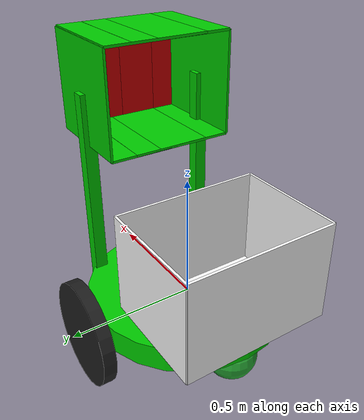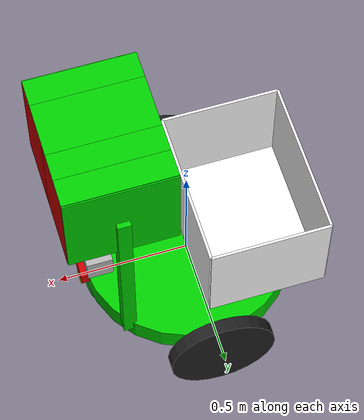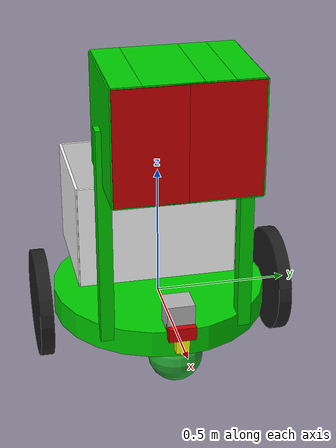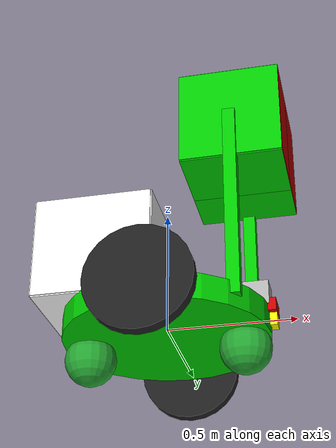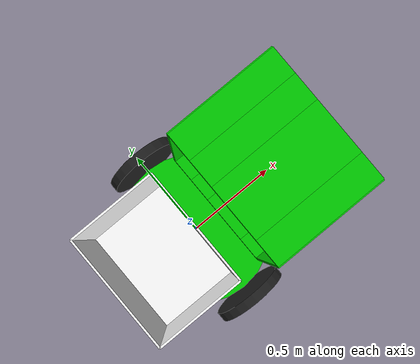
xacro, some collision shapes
<?xml version='1.0'?>

<robot name="my_robot" xmlns:xacro="http://www.ros.org/wiki/xacro">

     <material name="blue">
        <color rgba="0 0 0.8 1"/>
    </material>
    <material name="red">
        <color rgba="0.8 0 0 1"/>
    </material>
    <material name="green">
        <color rgba="0 0.8 0 1"/>
    </material>
    <material name="white">
        <color rgba="1.0 1.0 1.0 1"/>
    </material>
    <material name="yellow">
        <color rgba="1.0 1.0 0.0 1"/>
    </material>
    <!-- Include plugins-->
    <xacro:include filename="$(find my_robot)/urdf/my_robot.gazebo" />

    <!-- Include arm definition file-->
    <xacro:include filename="$(find my_robot)/urdf/arm.xacro" />

    <!-- Include ball container file -->
    <xacro:include filename="$(find my_robot)/urdf/ball_container.xacro" />

    <!-- create the left and right arm-->
    <arm lr="left" tY =  "-1" />
    <arm lr="right" tY = "1" />

    <!-- create ball container-->
    <ball_container/>

    <!-- link and joints definition of the robot chassis and wheel-->

    <link name="robot_footprint"></link>

    <joint name="robot_footprint_joint" type="fixed">
        <origin xyz="0 0 0" rpy="0 0 0"/>
        <parent link="robot_footprint"/>
        <child link="chassis"/>
    </joint>

    <link name="base_footprint"></link>

    <joint name="base_footprint_joint" type="fixed">
        <origin xyz="0 0 0" rpy="0 0 0"/>
        <parent link="robot_footprint"/>
        <child link="base_footprint"/>
    </joint>

    <!-- definition of the chassis -->

    <link name='chassis'>
        <pose>0 0 0.1 0 0 0</pose>

        <inertial>
            <mass value="15.0"/>
            <origin xyz="0.0 0 0" rpy="0 0 0"/>
            <inertia
                ixx="0.1" ixy="0" ixz = "0"
                          iyy = "0.1" iyz = "0"
                                      izz = "0.1"

            />

        </inertial>

        <collision name='collision'>
            <origin xyz="0 0 0" rpy="0 0 0"/>
            <geometry>
                <cylinder radius="0.4" length="0.1"/>
            </geometry>
        </collision>

        <visual name='chassis_visual'>
            <origin xyz = "0 0 0" rpy = "0 0 0"/>
            <geometry>
                <cylinder radius="0.4" length="0.1"/>
            </geometry>
            <material name="green"/>
        </visual>

        <collision name = 'back_caster_collision'>
            <origin xyz = "-0.3 0 -0.1" rpy=" 0 0 0"/>
            <geometry>
                <sphere radius="0.099"/>
            </geometry>

        </collision>

        <visual name='back_caster_visual'>
            <origin xyz = "-0.3 0 -0.1" rpy=" 0 0 0"/>
            <geometry>
                <sphere radius="0.1"/>
            </geometry>
        </visual>

        <collision name = 'front_caster_collision'>
            <origin xyz = "0.3 0 -0.1" rpy=" 0 0 0"/>
            <geometry>
                <sphere radius="0.099"/>
            </geometry>

        </collision>

        <visual name='front_caster_visual'>
            <origin xyz = "0.3 0 -0.1" rpy=" 0 0 0"/>
            <geometry>
                <sphere radius="0.1"/>
            </geometry>
        </visual>

    </link>

    <gazebo reference="chassis">
        <material>Gazebo/Green</material>
    </gazebo>

    <link name='left_wheel'>
        <inertial>
            <mass value="5.0"/>
            <origin xyz="0.0 0 0" rpy="0 1.5707 1.5707"/>
            <inertia
                ixx="0.1" ixy="0" ixz = "0"
                          iyy = "0.1" iyz = "0"
                                      izz = "0.1"

            />

        </inertial>

        <collision name = 'left_wheel_collision'>
            <origin xyz = "0.0 0 0.0" rpy=" 0 1.5707 1.5707"/>
            <geometry>
                <cylinder radius="0.2" length="0.05"/>
            </geometry>

        </collision>

        <visual name='left_wheel_visual'>
            <origin xyz = "0.0 0 0.0" rpy=" 0 1.5707 1.5707"/>
            <geometry>
                <cylinder radius="0.2" length="0.05"/>
            </geometry>
        </visual>
    </link>

    <gazebo reference="left_wheel">
        <material>Gazebo/Black</material>
    </gazebo>

    <link name='right_wheel'>
        <inertial>
            <mass value="5.0"/>
            <origin xyz="0.0 0 0" rpy="0 1.5707 1.5707"/>
            <inertia
                ixx="0.1" ixy="0" ixz = "0"
                          iyy = "0.1" iyz = "0"
                                      izz = "0.1"

            />

        </inertial>

        <collision name = 'right_wheel_collision'>
            <origin xyz = "0.0 0 0.0" rpy=" 0 1.5707 1.5707"/>
            <geometry>
                <cylinder radius="0.2" length="0.05"/>
            </geometry>

        </collision>

        <visual name='right_wheel_visual'>
            <origin xyz = "0.0 0 0.0" rpy=" 0 1.5707 1.5707"/>
            <geometry>
                <cylinder radius="0.2" length="0.05"/>
            </geometry>
        </visual>
    </link>

    <gazebo reference="right_wheel">
        <material>Gazebo/Black</material>
    </gazebo>

    <joint type = "continuous" name = "left_wheel_hinge">
        <origin xyz="0 0.45 0" rpy="0 0 0"/>
        <child link="left_wheel"/>
        <parent link="chassis"/>
        <axis xyz = "0 1 0" rpy = "0 0 0"/>
        <limit effort="10000" velocity="1000"/>
        <dynamics damping="1.0" friction="1.0"/>
    </joint>

    <joint type = "continuous" name = "right_wheel_hinge">
        <origin xyz="0 -0.45 0" rpy="0 0 0"/>
        <child link="right_wheel"/>
        <parent link="chassis"/>
        <axis xyz = "0 1 0" rpy = "0 0 0"/>
        <limit effort="10000" velocity="1000"/>
        <dynamics damping="1.0" friction="1.0"/>
    </joint>

    <link name = 'camera'>
        <inertial>
            <mass value="0.1"/>
            <origin xyz="0.0 0 0" rpy="0 0 0"/>
            <inertia
                ixx="1e-6" ixy="0" ixz = "0"
                          iyy = "1e-6" iyz = "0"
                                      izz = "1e-6"

            />

        </inertial>

        <collision name = 'camera_collision'>
            <origin xyz = "0.0 0 0.0" rpy=" 0 0 0"/>
            <geometry>
                <box size = "0.05 0.05 0.05"/>
            </geometry>

        </collision>

        <visual name='camera_visual'>
            <origin xyz = "0.0 0 0.0" rpy=" 0 0 0"/>
            <geometry>
                <box size = "0.05 0.05 0.05"/>
            </geometry>
            <material name="yellow"/>
        </visual>
    </link>

    <gazebo reference="camera">
        <material>Gazebo/Yellow</material>
    </gazebo>

    <joint type = "fixed" name = "camera_joint">
        <origin xyz="0.4 0 0" rpy="0 0 0"/>
        <child link="camera"/>
        <parent link="chassis"/>
        <axis xyz = "0 1 0" rpy = "0 0 0"/>
    </joint>

    <!-- add the rgbd camera link and rgbd_camera_joint -->
    <link name = 'rgbd_camera'>
        <inertial>
            <mass value="0.1"/>
            <origin xyz="0.0 0 0" rpy="0 0 0"/>
            <inertia
                ixx="1e-6" ixy="0" ixz = "0"
                          iyy = "1e-6" iyz = "0"
                                      izz = "1e-6"

            />
        </inertial>

        <collision name = 'rgbd_camera_collision'>
            <origin xyz = "0.0 0 0.0" rpy=" 0 0 0"/>
            <geometry>
                <box size = "0.05 0.1 0.05"/>
            </geometry>

        </collision>

        <visual name='rgbd_camera_visual'>
            <origin xyz = "0.0 0 0.0" rpy=" 0 0 0"/>
            <geometry>
                <box size = "0.05 0.1 0.05"/>
            </geometry>
            <material name="red"/>
        </visual>

    </link>

    <gazebo reference="rgbd_camera">
        <material>Gazebo/Red</material>
    </gazebo>

    <joint name="rgbd_camera_joint" type="fixed">
        <origin xyz="0.4 0 0.05" rpy="0 0 0"/>
        <child link="rgbd_camera"/>
        <parent link="chassis"/>
        <axis xyz = "0 1 0" rpy = "0 0 0"/>
    </joint>

    <!-- add the camera optical joint for rgbd camera -->

     <joint name="camera_optical_joint" type="fixed">
        <origin xyz="0 0 0" rpy="-1.5707 0 -1.5707"/>
        <parent link="rgbd_camera"/>
        <child link="camera_link_optical"/>
      </joint>

      <link name="camera_link_optical">
      </link>

    <!-- add the 2d lidar -->

    <link name = 'hokuyo'>
        <inertial>
            <mass value="1e-5"/>
            <origin xyz="0.0 0 0" rpy="0 0 0"/>
            <inertia
                ixx="1e-6" ixy="0" ixz = "0"
                          iyy = "1e-6" iyz = "0"
                                      izz = "1e-6"

            />

        </inertial>

        <collision name = 'hokuyo_collision'>
            <origin xyz = "0.0 0 0.0" rpy=" 0 0 0"/>
            <geometry>
                <box size = "0.1 0.1 0.1"/>
            </geometry>

        </collision>

        <visual name='hokuyo_visual'>
            <origin xyz = "0.0 0 0.0" rpy=" 0 0 0"/>
            <geometry>
                <mesh filename="package://my_robot/meshes/hokuyo.dae"/>
            </geometry>
        </visual>
    </link>

    <joint type = "fixed" name = "hokuyo_joint">
        <origin xyz="0.35 0 0.1" rpy="0 0 0"/>
        <child link="hokuyo"/>
        <parent link="chassis"/>
        <axis xyz = "0 1 0" rpy = "0 0 0"/>
    </joint>

</robot>

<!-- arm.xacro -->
<robot xmlns:xacro="http://www.ros.org/wiki/xacro">

  <!-- Arms Properties properties -->
  <xacro:property name="arm_x_size" value="0.05"/>
  <xacro:property name="arm_y_size" value="0.05"/>
  <xacro:property name="arm_z_size" value="0.8"/>
  <xacro:property name="armMass" value="0.001"/>
  <xacro:property name="armOffsetX" value="0.3"/>
  <xacro:property name="armOffsetY" value="0.2"/>
  <xacro:property name="armOffsetZ" value="0.128"/>

  <!-- Arms Shovel properties -->
  <xacro:property name="shovel_x_size" value="0.4"/>
  <xacro:property name="shovel_y_size" value="0.4"/>
  <xacro:property name="shovel_z_size" value="0.01"/>
  <xacro:property name="shovelMass" value="0.001"/>
  <xacro:property name="shovelOffsetX" value="0.0"/>
  <xacro:property name="shovelOffsetY" value="0.0"/>
  <xacro:property name="shovelOffsetZ" value="0.0"/>

  <xacro:macro name="arm" params="lr tY">

    <link name="${lr}_arm">
      <collision>
        <origin xyz="0 0 ${arm_z_size/2.0}"
        		rpy="0 0 0" />
        <geometry>
            <box size="${arm_x_size} ${arm_y_size} ${arm_z_size}"/>
        </geometry>
      </collision>

      <visual>
        <origin xyz="0 0 ${arm_z_size/2.0}"
        		rpy="0 0 0" />
        <geometry>
          <box size="${arm_x_size} ${arm_y_size} ${arm_z_size}"/>
        </geometry>
        <material name="green"/>
      </visual>

      <inertial>
        <origin xyz="0 0 ${arm_z_size/2.0}"
        		rpy="0 0 0" />
        <mass value="${armMass}"/>
        <box_inertia
          m="${armMass}"
          x="${arm_x_size}"
          y="${arm_y_size}"
          z="${arm_z_size}"/>

            <inertia
                ixx="0.1" ixy="0" ixz = "0"
                          iyy = "0.1" iyz = "0"
                                      izz = "0.1"

            />
      </inertial>
    </link>

    <gazebo reference="${lr}_arm">
      <mu1 value="1.0"/>
      <mu2 value="1.0"/>
      <kp  value="10000000.0" />
      <kd>10000000.0</kd>
      <minDepth>0.001</minDepth>
      <maxVel>1.0</maxVel>
      <material>Gazebo/Green</material>
    </gazebo>

    <joint name="${lr}_arm_hinge" type="continuous">
      <parent link="chassis"/>
      <child link="${lr}_arm"/>
      <origin
        xyz = "${armOffsetX} ${-tY*(armOffsetY+arm_x_size)} 0.0"
        rpy = "0 0 0" />
      <axis xyz="0 1 0"
      		  rpy="0 0 0" />
      <limit effort="10000.0" velocity="0.5"/>
      <joint_properties damping="0.0" friction="0.0"/>
    </joint>

    <transmission name="${lr}_arm_trans">
      <type>transmission_interface/SimpleTransmission</type>
      <joint name="${lr}_arm_hinge">
        <hardwareInterface>EffortJointInterface</hardwareInterface>
      </joint>
      <actuator name="${lr}ArmMotor">
        <hardwareInterface>EffortJointInterface</hardwareInterface>
        <mechanicalReduction>1</mechanicalReduction>
      </actuator>
    </transmission>

    <!-- SHOVEL -->
    <link name="${lr}_arm_shovel">
      <collision>
        <origin xyz="0 0 0"
        		rpy="0 0 0" />
        <geometry>
            <box size="${shovel_x_size} ${shovel_y_size} ${shovel_z_size}"/>
        </geometry>
      </collision>

      <visual>
        <origin xyz="0 0 0"
        		rpy="0 0 0" />
        <geometry>
          <box size="${shovel_x_size} ${shovel_y_size} ${shovel_z_size}"/>
        </geometry>
        <material name="green"/>
      </visual>

      <collision>
        <origin xyz="0 ${tY*(shovel_x_size/2)} ${shovel_x_size/2}"
        		rpy="1.57 0 0" />
        <geometry>
            <box size="${shovel_x_size} ${shovel_y_size} ${shovel_z_size}"/>
        </geometry>
      </collision>

      <visual>
        <origin xyz="0 ${tY*(shovel_x_size/2)} ${shovel_x_size/2}"
        		rpy="1.57 0 0" />
        <geometry>
          <box size="${shovel_x_size} ${shovel_y_size} ${shovel_z_size}"/>
        </geometry>
        <material name="green"/>
      </visual>

      <collision>
        <origin xyz="0 ${-tY*(shovel_x_size/2)} ${shovel_x_size/2}"
        		rpy="1.57 0 0" />
        <geometry>
            <box size="${shovel_x_size} ${shovel_y_size} ${shovel_z_size}"/>
        </geometry>
      </collision>

      <visual>
        <origin xyz="0 ${-tY*(shovel_x_size/2)} ${shovel_x_size/2}"
        		rpy="1.57 0 0" />
        <geometry>
          <box size="${shovel_x_size} ${shovel_y_size} ${shovel_z_size}"/>
        </geometry>
        <material name="green"/>
      </visual>

      <inertial>
        <origin xyz="0 0 0"
        		rpy="0 0 0" />
        <mass value="${shovelMass}"/>
        <box_inertia
          m="${shovelMass}"
          x="${shovel_x_size}"
          y="${shovel_y_size}"
          z="${shovel_z_size}"/>
            <inertia
                ixx="0.1" ixy="0" ixz = "0"
                          iyy = "0.1" iyz = "0"
                                      izz = "0.1"

            />
      </inertial>
    </link>

    <gazebo reference="${lr}_arm_shovel">
      <mu1 value="0.001"/>
      <mu2 value="0.001"/>
      <kp  value="10000000.0" />
      <kd>10000000.0</kd>
      <minDepth>0.001</minDepth>
      <maxVel>1.0</maxVel>
      <material>Gazebo/Blue</material>
    </gazebo>

    <joint name="${lr}_arm_shovel_hinge" type="fixed">
      <parent link="${lr}_arm"/>
      <child link="${lr}_arm_shovel"/>
      <origin
        xyz = "${shovelOffsetX} ${shovelOffsetY} ${arm_z_size}"
        rpy = "${-tY*1.57} 0 0" />
    </joint>

    <link name="${lr}_arm_shovel_lid">

      <collision>
        <origin xyz="0 0 ${shovel_x_size/2}"
        		rpy="0 1.57 0" />
        <geometry>
            <box size="${shovel_x_size} ${shovel_y_size} ${shovel_z_size/5}"/>
        </geometry>
      </collision>

      <visual>
        <origin xyz="0 0 ${shovel_x_size/2}"
        		rpy="0 1.57 0" />
        <geometry>
          <box size="${shovel_x_size} ${shovel_y_size} ${shovel_z_size/5}"/>
        </geometry>
        <material name="red"/>
      </visual>

      <inertial>
        <origin xyz="0 0 ${shovel_x_size/2}"
        		rpy="0 1.57 0" />
        <mass value="${shovelMass}"/>
        <box_inertia
          m="${shovelMass}"
          x="${shovel_x_size}"
          y="${shovel_y_size}"
          z="${shovel_z_size/5}"/>
            <inertia
                ixx="0.1" ixy="0" ixz = "0"
                          iyy = "0.1" iyz = "0"
                                      izz = "0.1"

            />
      </inertial>
    </link>

    <gazebo reference="${lr}_arm_shovel_lid">
      <mu1 value="0.001"/>
      <mu2 value="0.001"/>
      <kp  value="10000000.0" />
      <kd>10000000.0</kd>
      <material>Gazebo/Red</material>
    </gazebo>

    <joint name="${lr}_arm_shovel_lid_joint" type="prismatic">
      <origin rpy="${-tY*1.57} 0 0" xyz="${shovel_x_size/2} 0 ${arm_z_size}" />
      <parent link="${lr}_arm" />
      <child link="${lr}_arm_shovel_lid" />
      <axis xyz="0 0 1" />
      <limit effort="1000.0" lower="-1.0" upper="0.0" velocity="1.0" />
    </joint>

  <transmission name="${lr}_arm_shovel_lid_trans">
      <type>transmission_interface/SimpleTransmission</type>
      <joint name="${lr}_arm_shovel_lid_joint">
        <hardwareInterface>EffortJointInterface</hardwareInterface>
      </joint>
      <actuator name="${lr}ArmShovelLidMotor">
        <hardwareInterface>EffortJointInterface</hardwareInterface>
        <mechanicalReduction>1</mechanicalReduction>
      </actuator>
    </transmission>

  </xacro:macro>

</robot>

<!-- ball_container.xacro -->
<robot xmlns:xacro="http://www.ros.org/wiki/xacro">

  <!-- Arms Properties properties -->
  <xacro:property name="box_width" value="0.6"/>
  <xacro:property name="box_length" value="0.45"/>
  <xacro:property name="box_height" value="0.4"/>
  <xacro:property name="box_side_width" value="0.01"/>

  <xacro:macro name="ball_container">

    <link name = "box">
       <!-- base -->
       <collision name="base_collision">
        <origin xyz="0 0 0"
        		rpy="0 0 0" />
        <geometry>
            <box size="${box_length} ${box_width} ${box_side_width}"/>
        </geometry>
      </collision>

      <visual name="base_visual">
        <origin xyz="0 0 0"
        		rpy="0 0 0" />
        <geometry>
            <box size="${box_length} ${box_width} ${box_side_width}"/>
        </geometry>
        <material name="white"/>
      </visual>

       <!-- left side -->
       <collision name="left_collision">
        <origin xyz="0 ${box_width / 2} ${box_height / 2}"
        		rpy="0 0 0" />
        <geometry>
            <box size="${box_length} ${box_side_width} ${box_height}"/>
        </geometry>
      </collision>

      <visual name="left_visual">
        <origin xyz="0 ${box_width / 2} ${box_height / 2}"
        		rpy="0 0 0" />
        <geometry>
            <box size="${box_length} ${box_side_width} ${box_height}"/>
        </geometry>
        <material name="white"/>
      </visual>

       <!-- right side -->
       <collision name="right_collision">
        <origin xyz="0 ${- box_width / 2} ${box_height / 2}"
        		rpy="0 0 0" />
        <geometry>
            <box size="${box_length} ${box_side_width} ${box_height}"/>
        </geometry>
      </collision>

      <visual name="right_visual">
        <origin xyz="0 ${- box_width / 2} ${box_height / 2}"
        		rpy="0 0 0" />
        <geometry>
            <box size="${box_length} ${box_side_width} ${box_height}"/>
        </geometry>
        <material name="white"/>
      </visual>

       <!-- front side -->
       <collision name="front_collision">
        <origin xyz="${box_length / 2} 0 ${box_height / 2}"
        		rpy="0 0 0" />
        <geometry>
            <box size="${box_side_width} ${box_width} ${box_height}"/>
        </geometry>
      </collision>

      <visual name="front_visual">
        <origin xyz="${box_length / 2} 0 ${box_height / 2}"
        		rpy="0 0 0" />
        <geometry>
            <box size="${box_side_width} ${box_width} ${box_height}"/>
        </geometry>
        <material name="white"/>
      </visual>

       <!-- back side -->
       <collision name="back_collision">
        <origin xyz="${-box_length / 2} 0 ${box_height / 2}"
        		rpy="0 0 0" />
        <geometry>
            <box size="${box_side_width} ${box_width} ${box_height}"/>
        </geometry>
      </collision>

      <visual name="back_visual">
        <origin xyz="${-box_length / 2} 0 ${box_height / 2}"
        		rpy="0 0 0" />
        <geometry>
            <box size="${box_side_width} ${box_width} ${box_height}"/>
        </geometry>
        <material name="white"/>
      </visual>

      <inertial>
            <mass value="0.01"/>
            <origin xyz="0.0 0 0" rpy="0 0 0"/>
            <inertia
                ixx="0.1" ixy="0" ixz = "0"
                          iyy = "0.1" iyz = "0"
                                      izz = "0.1"

            />

      </inertial>

    </link>

    <gazebo reference="box">
      <material>Gazebo/White</material>
    </gazebo>

    <joint name="container_joint" type="fixed">
      <parent link="chassis"/>
      <child link="box"/>
      <origin
        xyz = "${- box_length / 2} 0.0 0.05"
        rpy = "0 0 0" />
      <axis xyz="0 1 0"
      		  rpy="0 0 0" />
    </joint>

  </xacro:macro>
</robot>
